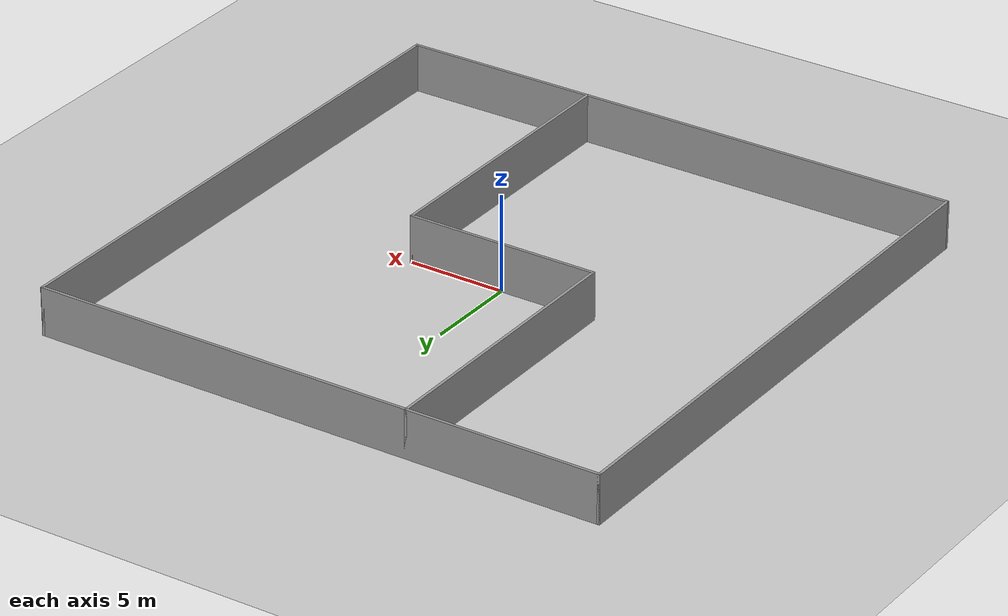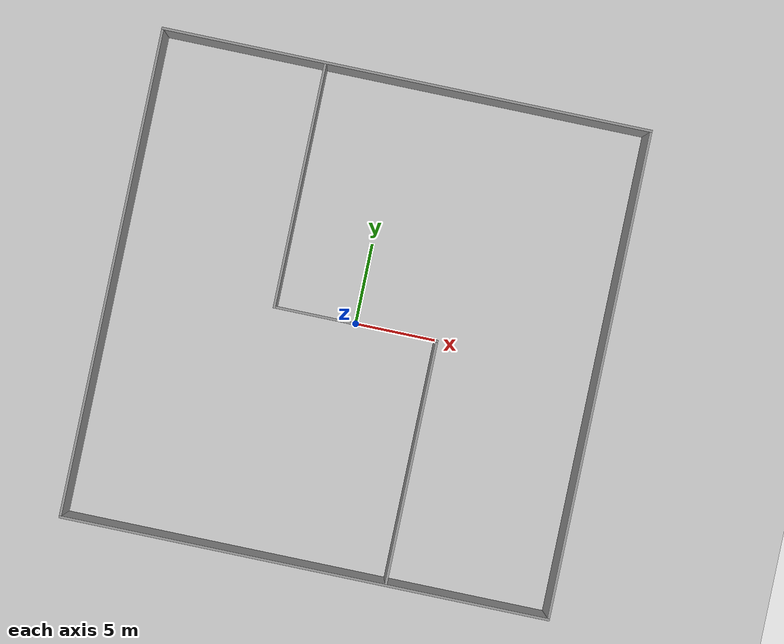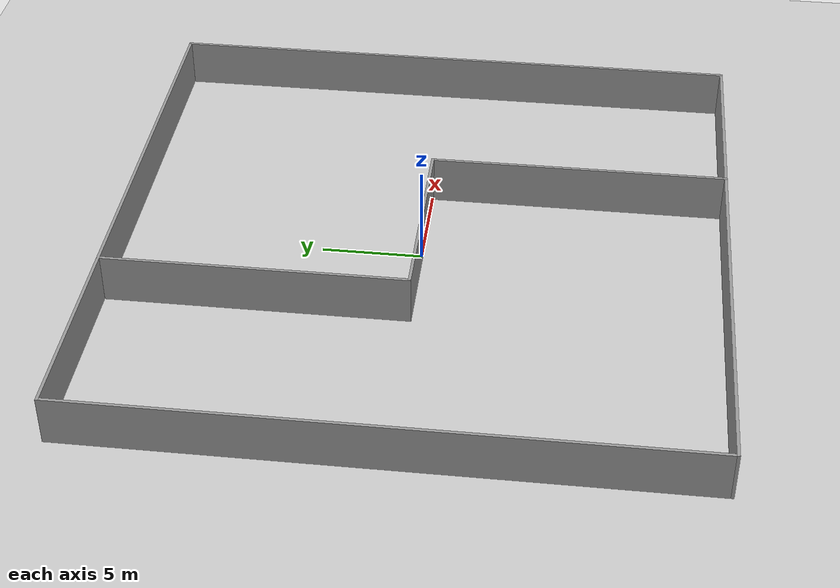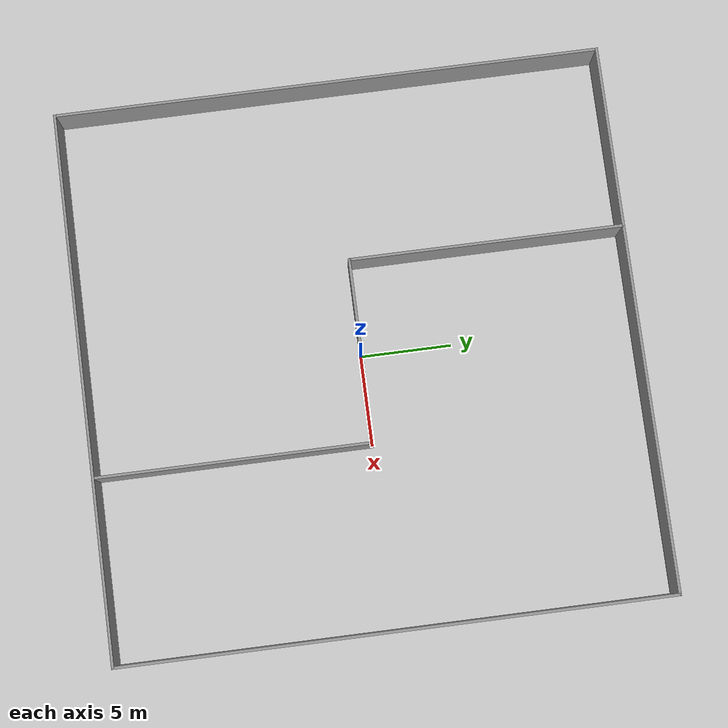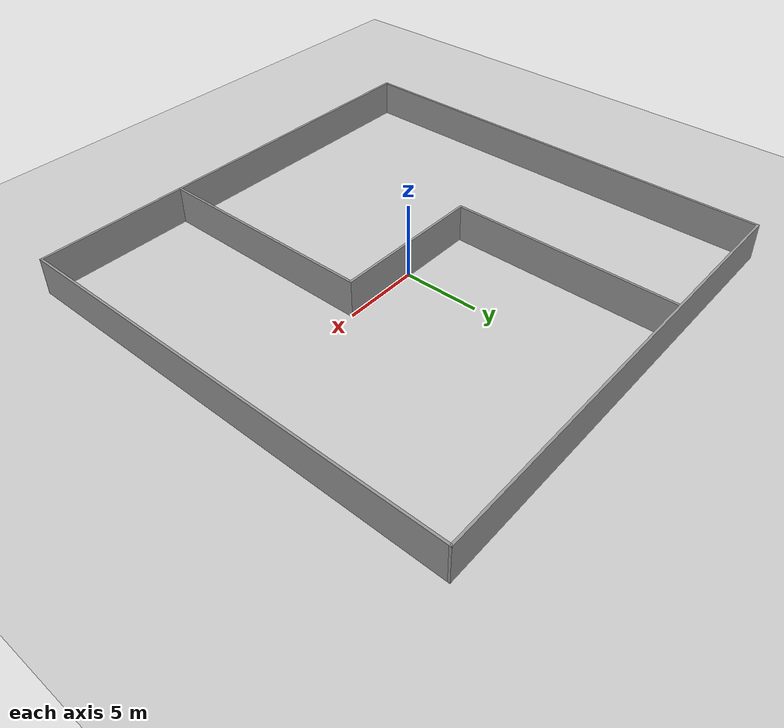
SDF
<sdf version="1.6">
 <world name="default">
  <light name="sun" type="directional">
   <pose>0 0 10 0 -0 0</pose>
   <diffuse>0.8 0.8 0.8 1</diffuse>
   <specular>0.2 0.2 0.2 1</specular>
   <attenuation>
    <range>1000</range>
    <constant>0.9</constant>
    <linear>0.01</linear>
    <quadratic>0.001</quadratic>
   </attenuation>
   <direction>-0.5 0.1 -0.9</direction>
  </light>
  <model name="ground_plane">
   <static>1</static>
   <link name="link">
    <collision name="collision">
     <geometry><plane><normal>0 0 1</normal><size>100 100</size></plane></geometry>
     <surface>
      <contact><collide_bitmask>65535</collide_bitmask></contact>
      <friction><ode><mu>100</mu><mu2>50</mu2></ode></friction>
     </surface>
    </collision>
    <visual name="visual">
     <cast_shadows>0</cast_shadows>
     <geometry><plane><normal>0 0 1</normal><size>100 100</size></plane></geometry>
     <material>
      <script><uri>file://media/materials/scripts/gazebo.material</uri><name>Gazebo/Grey</name></script>
     </material>
    </visual>
   </link>
  </model>
  <gravity>0 0 -9.8</gravity>
  <magnetic_field>6e-06 2.3e-05 -4.2e-05</magnetic_field>
  <atmosphere type="adiabatic"/>
  <physics name="default_physics" default="0" type="ode">
   <max_step_size>0.001</max_step_size>
   <real_time_factor>1</real_time_factor>
   <real_time_update_rate>1000</real_time_update_rate>
  </physics>
  <scene><ambient>0.4 0.4 0.4 1</ambient><background>0.7 0.7 0.7 1</background><shadows>1</shadows></scene>
  <spherical_coordinates>
   <surface_model>EARTH_WGS84</surface_model>
   <latitude_deg>0</latitude_deg>
   <longitude_deg>0</longitude_deg>
   <elevation>0</elevation>
   <heading_deg>0</heading_deg>
  </spherical_coordinates>
  <model name="model_2">
   <link name="Wall_10">
    <collision name="Wall_10_Collision">
     <geometry><box><size>30.15 0.15 2.5</size></box></geometry>
     <pose>0 0 1.25 0 -0 0</pose>
    </collision>
    <visual name="Wall_10_Visual">
     <pose>0 0 1.25 0 -0 0</pose>
     <geometry><box><size>30.15 0.15 2.5</size></box></geometry>
     <material>
      <script><uri>file://media/materials/scripts/gazebo.material</uri><name>Gazebo/Grey</name></script>
      <ambient>1 1 1 1</ambient>
     </material>
     <meta><layer>0</layer></meta>
    </visual>
    <pose>0 15 0 0 -0 0</pose>
   </link>
   <link name="Wall_12">
    <collision name="Wall_12_Collision">
     <geometry><box><size>30.15 0.15 2.5</size></box></geometry>
     <pose>0 0 1.25 0 -0 0</pose>
    </collision>
    <visual name="Wall_12_Visual">
     <pose>0 0 1.25 0 -0 0</pose>
     <geometry><box><size>30.15 0.15 2.5</size></box></geometry>
     <material>
      <script><uri>file://media/materials/scripts/gazebo.material</uri><name>Gazebo/Grey</name></script>
      <ambient>1 1 1 1</ambient>
     </material>
     <meta><layer>0</layer></meta>
    </visual>
    <pose>0 -15 0 0 -0 0</pose>
   </link>
   <link name="Wall_14">
    <collision name="Wall_14_Collision">
     <geometry><box><size>0.15 0.15 2.5</size></box></geometry>
     <pose>0 0 1.25 0 -0 0</pose>
    </collision>
    <visual name="Wall_14_Visual">
     <pose>0 0 1.25 0 -0 0</pose>
     <geometry><box><size>0.15 0.15 2.5</size></box></geometry>
     <material>
      <script><uri>file://media/materials/scripts/gazebo.material</uri><name>Gazebo/Grey</name></script>
      <ambient>1 1 1 1</ambient>
     </material>
     <meta><layer>0</layer></meta>
    </visual>
    <pose>15 15 0 0 -0 0</pose>
   </link>
   <link name="Wall_16">
    <collision name="Wall_16_Collision">
     <geometry><box><size>30.15 0.15 2.5</size></box></geometry>
     <pose>0 0 1.25 0 -0 0</pose>
    </collision>
    <visual name="Wall_16_Visual">
     <pose>0 0 1.25 0 -0 0</pose>
     <geometry><box><size>30.15 0.15 2.5</size></box></geometry>
     <material>
      <script><uri>file://media/materials/scripts/gazebo.material</uri><name>Gazebo/Grey</name></script>
      <ambient>1 1 1 1</ambient>
     </material>
     <meta><layer>0</layer></meta>
    </visual>
    <pose>15 0 0 0 -0 1.5708</pose>
   </link>
   <link name="Wall_18">
    <collision name="Wall_18_Collision">
     <geometry><box><size>15.15 0.15 2.5</size></box></geometry>
     <pose>0 0 1.25 0 -0 0</pose>
    </collision>
    <visual name="Wall_18_Visual">
     <pose>0 0 1.25 0 -0 0</pose>
     <geometry><box><size>15.15 0.15 2.5</size></box></geometry>
     <material>
      <script><uri>file://media/materials/scripts/gazebo.material</uri><name>Gazebo/Grey</name></script>
      <ambient>1 1 1 1</ambient>
     </material>
     <meta><layer>0</layer></meta>
    </visual>
    <pose>-5 7.5 0 0 -0 -1.5708</pose>
   </link>
   <link name="Wall_21">
    <collision name="Wall_21_Collision">
     <geometry><box><size>10.15 0.15 2.5</size></box></geometry>
     <pose>0 0 1.25 0 -0 0</pose>
    </collision>
    <visual name="Wall_21_Visual">
     <pose>0 0 1.25 0 -0 0</pose>
     <geometry><box><size>10.15 0.15 2.5</size></box></geometry>
     <material>
      <script><uri>file://media/materials/scripts/gazebo.material</uri><name>Gazebo/Grey</name></script>
      <ambient>1 1 1 1</ambient>
     </material>
     <meta><layer>0</layer></meta>
    </visual>
   </link>
   <link name="Wall_23">
    <collision name="Wall_23_Collision">
     <geometry><box><size>15.15 0.15 2.5</size></box></geometry>
     <pose>0 0 1.25 0 -0 0</pose>
    </collision>
    <visual name="Wall_23_Visual">
     <pose>0 0 1.25 0 -0 0</pose>
     <geometry><box><size>15.15 0.15 2.5</size></box></geometry>
     <material>
      <script><uri>file://media/materials/scripts/gazebo.material</uri><name>Gazebo/Grey</name></script>
      <ambient>1 1 1 1</ambient>
     </material>
     <meta><layer>0</layer></meta>
    </visual>
    <pose>5 -7.5 0 0 -0 -1.5708</pose>
   </link>
   <link name="Wall_6">
    <collision name="Wall_6_Collision">
     <geometry><box><size>30.15 0.15 2.5</size></box></geometry>
     <pose>0 0 1.25 0 -0 0</pose>
    </collision>
    <visual name="Wall_6_Visual">
     <pose>0 0 1.25 0 -0 0</pose>
     <geometry><box><size>30.15 0.15 2.5</size></box></geometry>
     <material>
      <script><uri>file://media/materials/scripts/gazebo.material</uri><name>Gazebo/Grey</name></script>
      <ambient>1 1 1 1</ambient>
     </material>
     <meta><layer>0</layer></meta>
    </visual>
    <pose>-15 0 0 0 -0 1.5708</pose>
   </link>
   <static>1</static>
  </model>
 </world>
</sdf>
